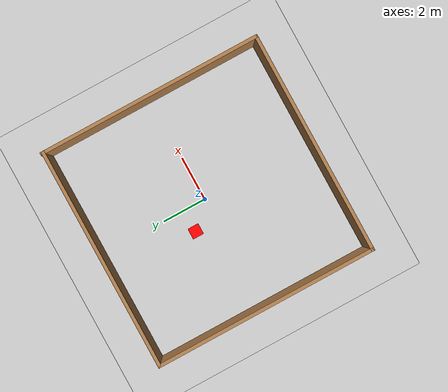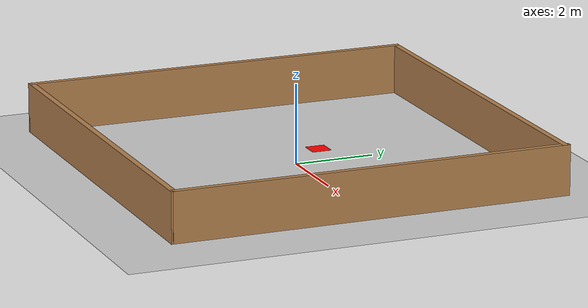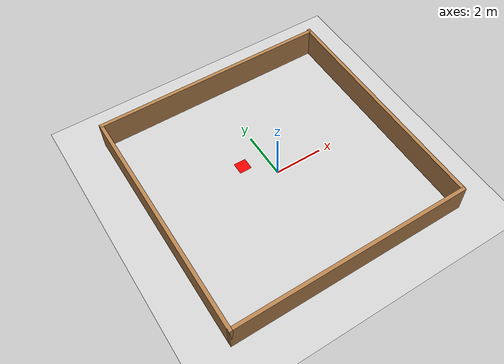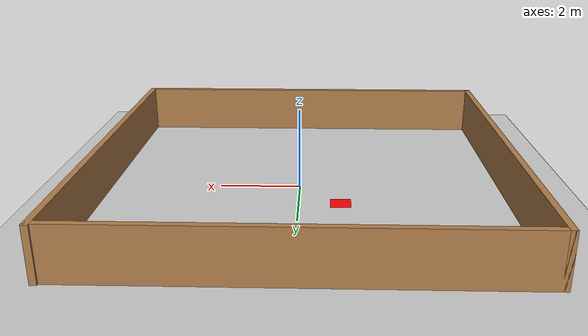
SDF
<sdf version="1.6">
 <world name="default">
  <light name="sun" type="directional">
   <pose>0 0 10 0 -0 0</pose>
   <diffuse>0.8 0.8 0.8 1</diffuse>
   <specular>0.2 0.2 0.2 1</specular>
   <attenuation>
    <range>1000</range>
    <constant>0.9</constant>
    <linear>0.01</linear>
    <quadratic>0.001</quadratic>
   </attenuation>
   <direction>-0.5 0.1 -0.9</direction>
  </light>
  <model name="ground_plane">
   <static>1</static>
   <link name="link">
    <collision name="collision">
     <geometry><plane><normal>0 0 1</normal><size>100 100</size></plane></geometry>
     <surface><friction><ode><mu>100</mu><mu2>50</mu2></ode></friction></surface>
    </collision>
    <visual name="visual">
     <cast_shadows>0</cast_shadows>
     <geometry><plane><normal>0 0 1</normal><size>100 100</size></plane></geometry>
     <material>
      <script><uri>file://media/materials/scripts/gazebo.material</uri><name>Gazebo/Grey</name></script>
     </material>
    </visual>
   </link>
  </model>
  <physics name="default_physics" default="0" type="ode">
   <real_time_update_rate>1000</real_time_update_rate>
   <max_step_size>0.001</max_step_size>
   <real_time_factor>1</real_time_factor>
   <ode>
    <solver>
     <type>quick</type>
     <iters>150</iters>
     <precon_iters>0</precon_iters>
     <sor>1.4</sor>
     <use_dynamic_moi_rescaling>1</use_dynamic_moi_rescaling>
    </solver>
    <constraints>
     <cfm>1e-05</cfm>
     <erp>0.2</erp>
     <contact_max_correcting_vel>2000</contact_max_correcting_vel>
     <contact_surface_layer>0.01</contact_surface_layer>
    </constraints>
   </ode>
  </physics>
  <scene><ambient>0.4 0.4 0.4 1</ambient><background>0.7 0.7 0.7 1</background><shadows>1</shadows></scene>
  <gravity>0 0 -9.8</gravity>
  <magnetic_field>6e-06 2.3e-05 -4.2e-05</magnetic_field>
  <atmosphere type="adiabatic"/>
  <spherical_coordinates>
   <surface_model>EARTH_WGS84</surface_model>
   <latitude_deg>0</latitude_deg>
   <longitude_deg>0</longitude_deg>
   <elevation>0</elevation>
   <heading_deg>0</heading_deg>
  </spherical_coordinates>
  <audio><device>default</device></audio>
  <model name="goal">
   <link name="goal_box">
    <visual name="goal_box">
     <pose>0 0 0.0005 0 -0 0</pose>
     <geometry><box><size>0.5 0.5 0.001</size></box></geometry>
     <material>
      <script><uri>file://media/materials/scripts/gazebo.material</uri><name>Gazebo/Grey</name></script>
      <ambient>1 0 0 1</ambient>
     </material>
    </visual>
   </link>
   <static>1</static>
   <pose>-1 1 0 0 -0 0</pose>
  </model>
  <model name="box_empty2">
   <pose>-0.120196 -0.049614 0 0 -0 0</pose>
   <link name="Wall_12">
    <collision name="Wall_12_Collision">
     <geometry><box><size>10 0.15 1.25</size></box></geometry>
     <pose>0 0 0.625 0 -0 0</pose>
    </collision>
    <visual name="Wall_12_Visual">
     <pose>0 0 0.625 0 -0 0</pose>
     <geometry><box><size>10 0.15 1.25</size></box></geometry>
     <material>
      <script><uri>file://media/materials/scripts/gazebo.material</uri><name>Gazebo/Wood</name></script>
      <ambient>1 1 1 1</ambient>
     </material>
     <meta><layer>0</layer></meta>
    </visual>
    <pose>-4.9275 -0.023 0 0 -0 1.5708</pose>
   </link>
   <link name="Wall_14">
    <collision name="Wall_14_Collision">
     <geometry><box><size>10 0.15 1.25</size></box></geometry>
     <pose>0 0 0.625 0 -0 0</pose>
    </collision>
    <visual name="Wall_14_Visual">
     <pose>0 0 0.625 0 -0 0</pose>
     <geometry><box><size>10 0.15 1.25</size></box></geometry>
     <material>
      <script><uri>file://media/materials/scripts/gazebo.material</uri><name>Gazebo/Wood</name></script>
      <ambient>1 1 1 1</ambient>
     </material>
     <meta><layer>0</layer></meta>
    </visual>
    <pose>-0.0025 -4.948 0 0 -0 0</pose>
   </link>
   <link name="Wall_20">
    <collision name="Wall_20_Collision">
     <geometry><box><size>10 0.15 1.25</size></box></geometry>
     <pose>0 0 0.625 0 -0 0</pose>
    </collision>
    <visual name="Wall_20_Visual">
     <pose>0 0 0.625 0 -0 0</pose>
     <geometry><box><size>10 0.15 1.25</size></box></geometry>
     <material>
      <script><uri>file://media/materials/scripts/gazebo.material</uri><name>Gazebo/Wood</name></script>
      <ambient>1 1 1 1</ambient>
     </material>
     <meta><layer>0</layer></meta>
    </visual>
    <pose>-0.0025 4.902 0 0 -0 0</pose>
   </link>
   <link name="Wall_8">
    <collision name="Wall_8_Collision">
     <geometry><box><size>10 0.15 1.25</size></box></geometry>
     <pose>0 0 0.625 0 -0 0</pose>
    </collision>
    <visual name="Wall_8_Visual">
     <pose>0 0 0.625 0 -0 0</pose>
     <geometry><box><size>10 0.15 1.25</size></box></geometry>
     <material>
      <script><uri>file://media/materials/scripts/gazebo.material</uri><name>Gazebo/Wood</name></script>
      <ambient>1 1 1 1</ambient>
     </material>
     <meta><layer>0</layer></meta>
    </visual>
    <pose>4.9275 0.023 0 0 -0 -1.5708</pose>
   </link>
   <static>1</static>
  </model>
 </world>
</sdf>
